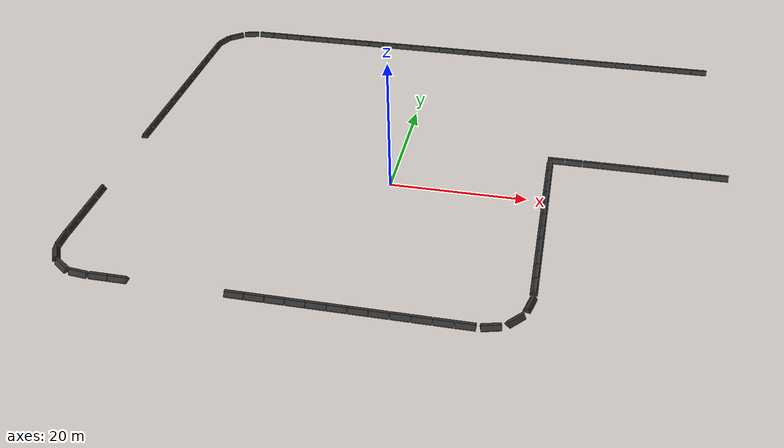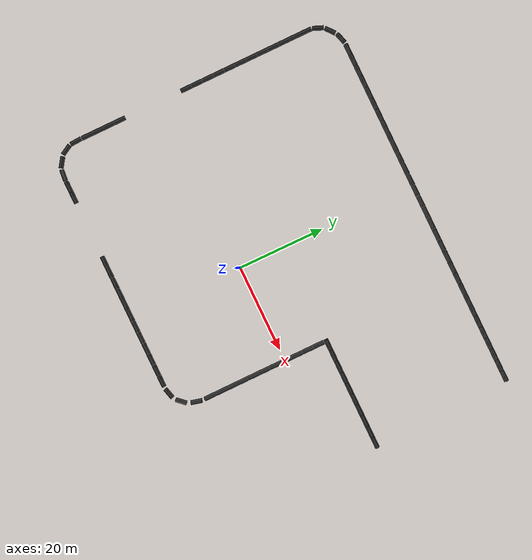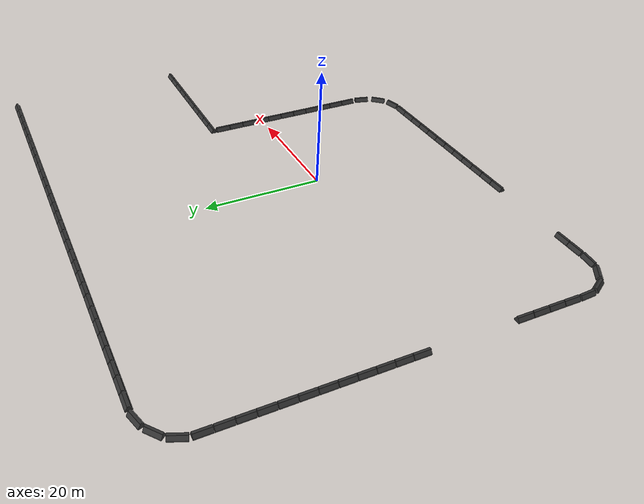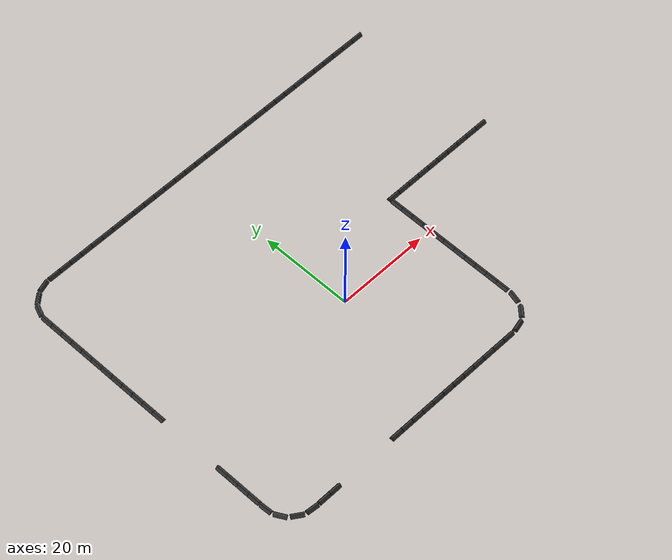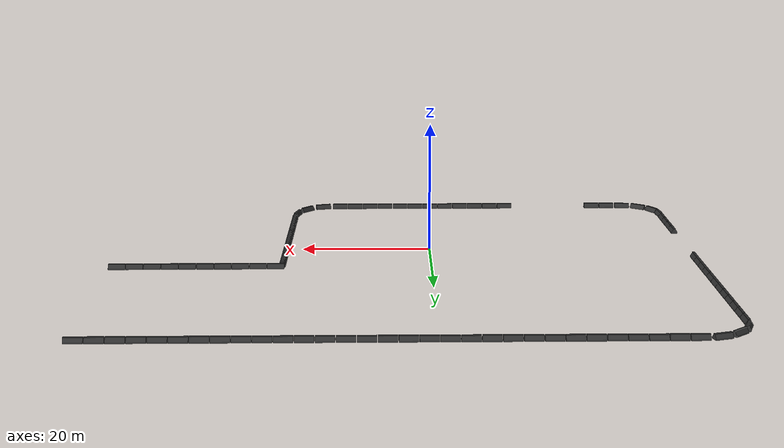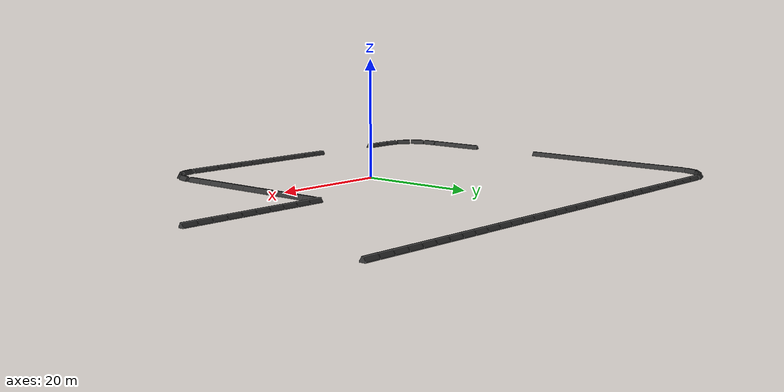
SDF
<?xml version="1.0" ?>
<sdf version="1.6">
  <model name="bariyer">
    <static>true</static>
    <link name="link">
      <visual name="visual">
        <geometry>
          <mesh>
            <uri>model://bariyer/meshes/Bariyer.dae</uri>
          </mesh>
        </geometry>
      </visual>
      <collision name="collision">
        <geometry>
          <mesh>
            <uri>model://bariyer/meshes/Bariyer.dae</uri>
          </mesh>
        </geometry>
      </collision>
    </link>
  </model>
</sdf>
